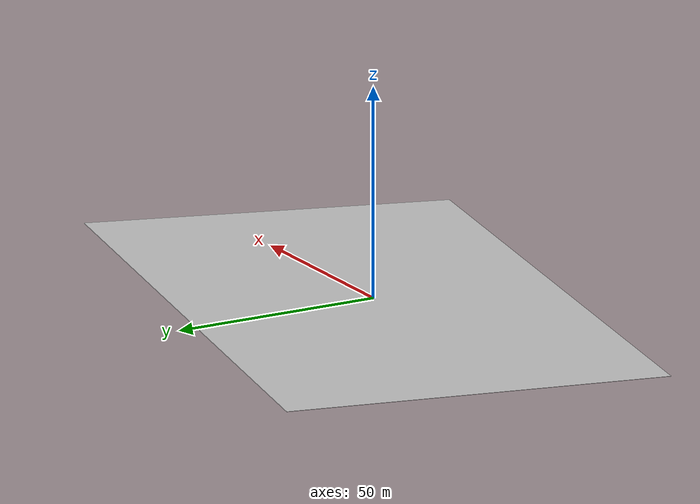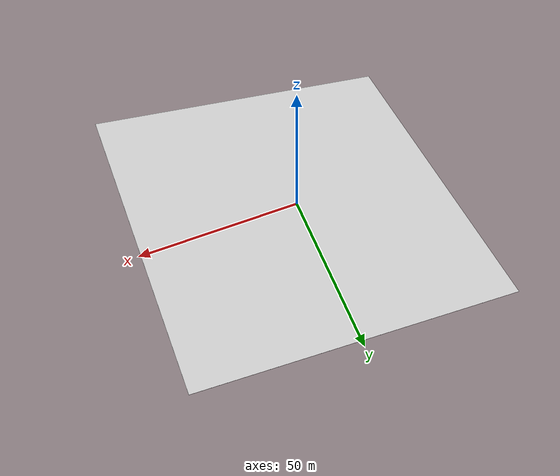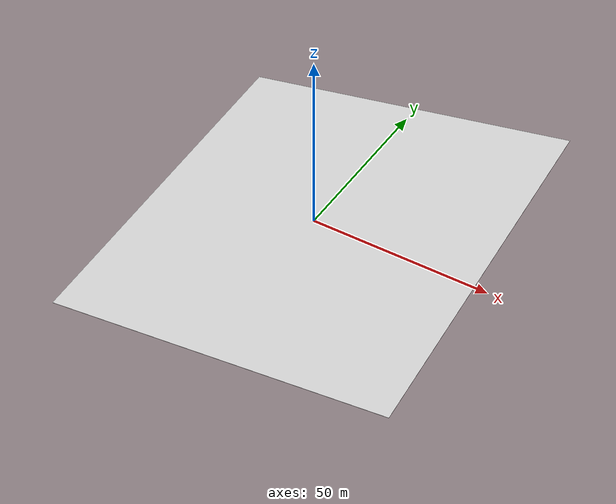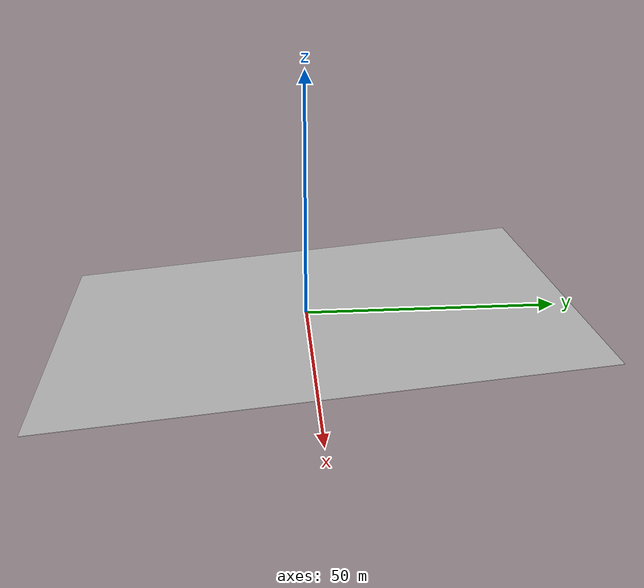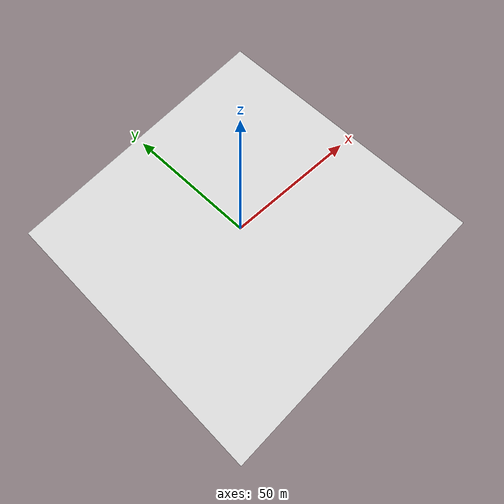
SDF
<?xml version="1.0" ?>
<sdf version="1.8">
  <world name="slope_10deg_cross_5deg_world">

    <gravity>0 0 -9.8</gravity>

    <physics default="0" name="default_physics" type="ode">
      <max_step_size>0.01</max_step_size>
      <real_time_factor>1</real_time_factor>
      <real_time_update_rate>100</real_time_update_rate>
    </physics>

    <plugin
      filename="gz-sim-physics-system"
      name="gz::sim::systems::Physics">
    </plugin>

    <plugin
      filename="gz-sim-user-commands-system"
      name="gz::sim::systems::UserCommands">
    </plugin>

    <plugin
      filename="gz-sim-scene-broadcaster-system"
      name="gz::sim::systems::SceneBroadcaster">
    </plugin>

    <light name="sun" type="directional">
      <cast_shadows>true</cast_shadows>
      <pose>0 0 10 0 0 0</pose>
      <diffuse>0.8 0.8 0.8 1</diffuse>
      <specular>0.2 0.2 0.2 1</specular>
      <attenuation>
        <range>1000</range>
        <constant>0.9</constant>
        <linear>0.01</linear>
        <quadratic>0.001</quadratic>
      </attenuation>
      <direction>-0.5 0.1 -0.9</direction>
    </light>

    <model name="slope_10deg_cross_5deg_plane">
      <static>true</static>

      <!-- x y z roll pitch yaw -->
      <pose>0 0 0 0.087266 -0.174533 0</pose>

      <link name="link">
        <collision name="collision">
          <geometry>
            <plane>
              <normal>0 0 1</normal>
              <size>100 100</size>
            </plane>
          </geometry>
          <surface>
            <friction>
              <ode>
                <mu>1.0</mu>
                <mu2>1.0</mu2>
              </ode>
            </friction>
          </surface>
        </collision>

        <visual name="visual">
          <geometry>
            <plane>
              <normal>0 0 1</normal>
              <size>100 100</size>
            </plane>
          </geometry>
          <material>
            <ambient>0.8 0.8 0.8 1</ambient>
            <diffuse>0.8 0.8 0.8 1</diffuse>
            <specular>0.8 0.8 0.8 1</specular>
          </material>
        </visual>
      </link>
    </model>

  </world>
</sdf>
